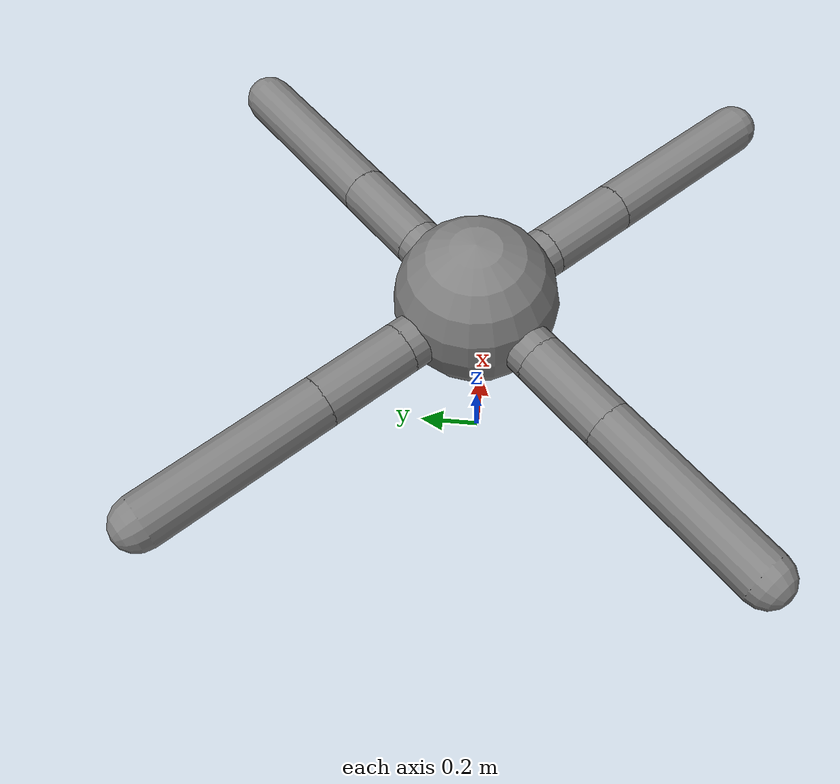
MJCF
<mujoco model="ant">
  <compiler angle="degree" coordinate="local" inertiafromgeom="auto"/>
  <size nstack="8000000" nconmax="20" njmax="50"/>

  <default>
    <joint armature="0.01" damping="2" frictionloss="0.2" limited="true"/>
    <geom density="165"/>
  </default>

  <worldbody>
    <body name="torso" pos="0 0 0.75">
      <geom name="torso_geom" pos="0 0 0" size="0.25" type="sphere"/>
      <joint armature="0" damping="0" limited="false" margin="0.01" name="root" pos="0 0 0" type="free"/>
      <!-- Standard root_site for position tracking (center of torso at ground level) -->
      <site name="root_site" pos="0 0 0" size="0.01" rgba="1 0 0 0.5"/>
      <body name="front_left_leg" pos="0 0 0">
        <geom fromto="0.0 0.0 0.0 0.2 0.2 0.0" name="aux_1_geom" size="0.08" type="capsule"/>
        <body name="aux_1" pos="0.2 0.2 0">
          <joint axis="0 0 1" name="hip_1" pos="0.0 0.0 0.0" range="-30 30" type="hinge"/>
          <geom fromto="0.0 0.0 0.0 0.2 0.2 0.0" name="left_leg_geom" size="0.08" type="capsule"/>
          <body pos="0.2 0.2 0">
            <joint axis="-1 1 0" name="ankle_1" pos="0.0 0.0 0.0" range="30 70" type="hinge"/>
            <geom fromto="0.0 0.0 0.0 0.4 0.4 0.0" name="left_ankle_geom" size="0.08" type="capsule"/>
            <site name="FR" pos="0.4 0.4 0" type="sphere" size="0.023"/>
          </body>
        </body>
      </body>
      <body name="front_right_leg" pos="0 0 0">
        <geom fromto="0.0 0.0 0.0 -0.2 0.2 0.0" name="aux_2_geom" size="0.08" type="capsule"/>
        <body name="aux_2" pos="-0.2 0.2 0">
          <joint axis="0 0 1" name="hip_2" pos="0.0 0.0 0.0" range="-30 30" type="hinge"/>
          <geom fromto="0.0 0.0 0.0 -0.2 0.2 0.0" name="right_leg_geom" size="0.08" type="capsule"/>
          <body pos="-0.2 0.2 0">
            <joint axis="1 1 0" name="ankle_2" pos="0.0 0.0 0.0" range="-70 -30" type="hinge"/>
            <geom fromto="0.0 0.0 0.0 -0.4 0.4 0.0" name="right_ankle_geom" size="0.08" type="capsule"/>
            <site name="FL" pos="-0.4 0.4 0" type="sphere" size="0.023"/>
          </body>
        </body>
      </body>
      <body name="back_leg" pos="0 0 0">
        <geom fromto="0.0 0.0 0.0 -0.2 -0.2 0.0" name="aux_3_geom" size="0.08" type="capsule"/>
        <body name="aux_3" pos="-0.2 -0.2 0">
          <joint axis="0 0 1" name="hip_3" pos="0.0 0.0 0.0" range="-30 30" type="hinge"/>
          <geom fromto="0.0 0.0 0.0 -0.2 -0.2 0.0" name="back_leg_geom" size="0.08" type="capsule"/>
          <body pos="-0.2 -0.2 0">
            <joint axis="-1 1 0" name="ankle_3" pos="0.0 0.0 0.0" range="-70 -30" type="hinge"/>
            <geom fromto="0.0 0.0 0.0 -0.4 -0.4 0.0" name="third_ankle_geom" size="0.08" type="capsule"/>
            <site name="RL" pos="-0.4 -0.4 0" type="sphere" size="0.023"/>
          </body>
        </body>
      </body>
      <body name="right_back_leg" pos="0 0 0">
        <geom fromto="0.0 0.0 0.0 0.2 -0.2 0.0" name="aux_4_geom" size="0.08" type="capsule"/>
        <body name="aux_4" pos="0.2 -0.2 0">
          <joint axis="0 0 1" name="hip_4" pos="0.0 0.0 0.0" range="-30 30" type="hinge"/>
          <geom fromto="0.0 0.0 0.0 0.2 -0.2 0.0" name="rightback_leg_geom" size="0.08" type="capsule"/>
          <body pos="0.2 -0.2 0">
            <joint axis="1 1 0" name="ankle_4" pos="0.0 0.0 0.0" range="30 70" type="hinge"/>
            <geom fromto="0.0 0.0 0.0 0.4 -0.4 0.0" name="fourth_ankle_geom" size="0.08" type="capsule"/>
            <site name="RR" pos="0.4 -0.4 0" type="sphere" size="0.023"/>
          </body>
        </body>
      </body>
    </body>
  </worldbody>

  <sensor>
    <framequat name="imu_quat" objtype="site" objname="root_site"/>
    <gyro name="imu_ang_vel" site="root_site"/>
    <accelerometer name="imu_lin_acc" site="root_site"/>
    <framelinvel name="imu_lin_vel" objtype="site" objname="root_site"/>
    <frameangvel name="imu_ang_vel_frame" objtype="site" objname="root_site"/>
  </sensor>

</mujoco>
